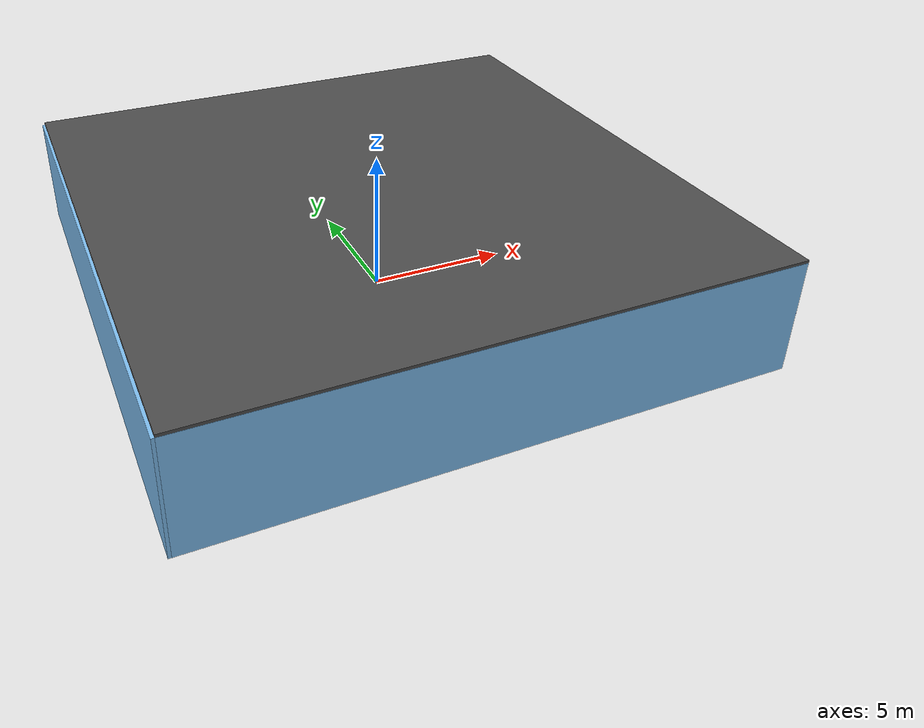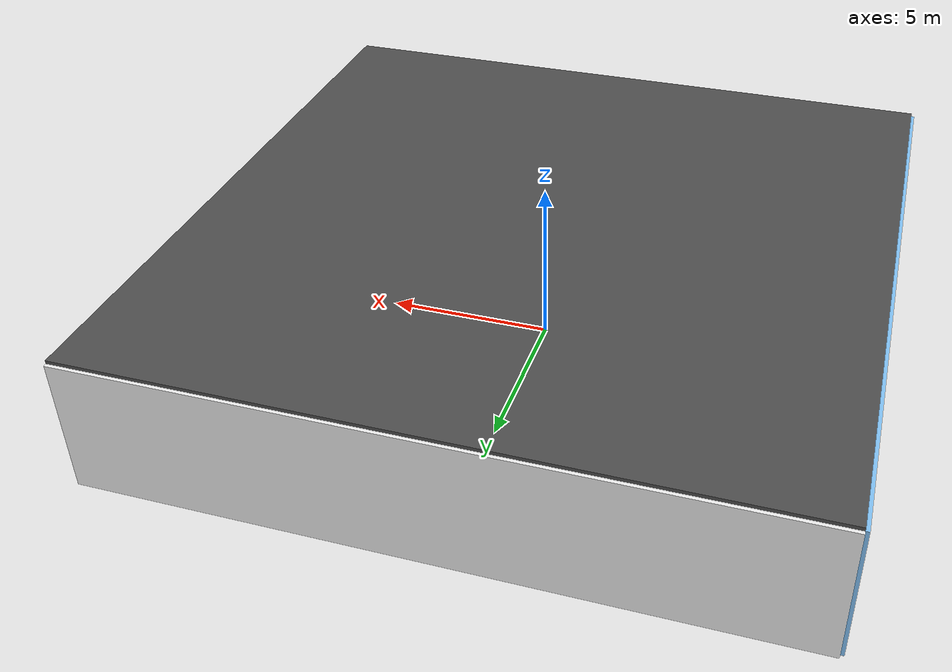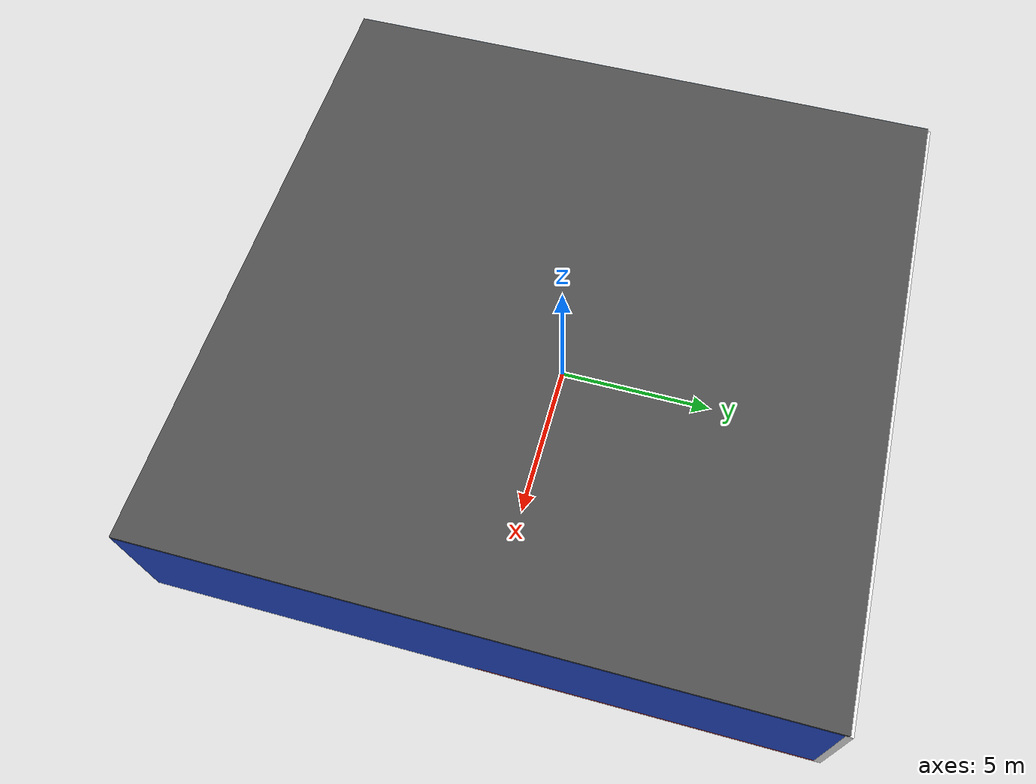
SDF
<sdf version="1.4">
 <world name="default">
  <physics type="ode">
   <max_step_size>0.001</max_step_size>
   <real_time_factor>1</real_time_factor>
   <real_time_update_rate>1000</real_time_update_rate>
   <gravity>0 0 -9.8</gravity>
  </physics>
  <scene><ambient>0.4 0.4 0.4 1</ambient><background>0.7 0.7 0.7 1</background><shadows>1</shadows></scene>
  <model name="Surrounding">
   <static>1</static>
   <link name="Ceiling">
    <collision name="Ceiling_Collision"><geometry><box><size>20 20 0.1</size></box></geometry></collision>
    <visual name="Ceiling_Visual">
     <geometry><box><size>20 20 0.1</size></box></geometry>
     <material>
      <script><uri>file://media/materials/scripts/gazebo.material</uri><name>Gazebo/DarkGrey</name></script>
     </material>
    </visual>
    <pose>0 0 4.05 0 0 0</pose>
   </link>
   <link name="Wall_South">
    <collision name="Wall_South_Collision">
     <geometry><box><size>20 0 4</size></box></geometry>
     <pose>0 0 2 0 -0 0</pose>
    </collision>
    <visual name="Wall_South_Visual">
     <pose>0 0 2 0 -0 0</pose>
     <geometry><box><size>20 0 4</size></box></geometry>
     <material>
      <script><uri>file://media/materials/scripts/gazebo.material</uri><name>Gazebo/SkyBlue</name></script>
     </material>
    </visual>
    <velocity_decay><linear>0</linear><angular>0</angular></velocity_decay>
    <pose>0 -10 0 0 -0 0</pose>
   </link>
   <link name="Wall_East">
    <collision name="Wall_21_Collision">
     <geometry><box><size>20 0 4</size></box></geometry>
     <pose>0 0 2 0 -0 0</pose>
    </collision>
    <visual name="Wall_21_Visual">
     <pose>0 0 2 0 -0 0</pose>
     <geometry><box><size>20 0 4</size></box></geometry>
     <material>
      <script><uri>file://media/materials/scripts/gazebo.material</uri><name>Gazebo/BlueGlow</name></script>
     </material>
    </visual>
    <velocity_decay><linear>0</linear><angular>0</angular></velocity_decay>
    <pose>10 0 0 0 -0 1.5708</pose>
   </link>
   <link name="Wall_North">
    <collision name="Wall_22_Collision">
     <geometry><box><size>20 0.2 4</size></box></geometry>
     <pose>0 0 2 0 -0 0</pose>
    </collision>
    <visual name="Wall_22_Visual">
     <pose>0 0 2 0 -0 0</pose>
     <geometry><box><size>20 0.2 4</size></box></geometry>
     <material>
      <script><uri>file://media/materials/scripts/gazebo.material</uri><name>Gazebo/WhiteGlow</name></script>
     </material>
    </visual>
    <velocity_decay><linear>0</linear><angular>0</angular></velocity_decay>
    <pose>0 10 0 0 -0 0</pose>
   </link>
   <link name="Wall_West">
    <collision name="Wall_23_Collision">
     <geometry><box><size>20 0.2 4</size></box></geometry>
     <pose>0 0 2 0 -0 0</pose>
    </collision>
    <visual name="Wall_23_Visual">
     <pose>0 0 2 0 -0 0</pose>
     <geometry><box><size>20 0.2 4</size></box></geometry>
     <material>
      <script><uri>file://media/materials/scripts/gazebo.material</uri><name>Gazebo/SkyBlue</name></script>
     </material>
    </visual>
    <velocity_decay><linear>0</linear><angular>0</angular></velocity_decay>
    <pose>-10 0 0 0 0 -1.5708</pose>
   </link>
   <link name="Ground_link">
    <collision name="collision">
     <pose>0 0 .05 0 -0 0</pose>
     <geometry><box><size>20 20 0.1</size></box></geometry>
    </collision>
    <visual name="visual">
     <pose>0 0 .05 0 -0 0</pose>
     <geometry><box><size>20 20 0.1</size></box></geometry>
     <material>
      <script><uri>file://media/materials/scripts/gazebo.material</uri><name>Gazebo/Red</name></script>
     </material>
    </visual>
   </link>
   <static>1</static>
  </model>
  <spherical_coordinates>
   <surface_model>EARTH_WGS84</surface_model>
   <latitude_deg>0</latitude_deg>
   <longitude_deg>0</longitude_deg>
   <elevation>0</elevation>
   <heading_deg>0</heading_deg>
  </spherical_coordinates>
  <light name="lightball_0" type="diffuse">
   <diffuse>0.8 0.8 0.8 1</diffuse>
   <specular>0.2 0.2 0.2 1</specular>
   <attenuation>
    <range>100</range>
    <constant>0.7</constant>
    <linear>0.01</linear>
    <quadratic>0.001</quadratic>
   </attenuation>
   <direction>-0.5 0.1 -0.9</direction>
   <pose>-9.63610668861 -9.25148400574 1.42734275089 0 0 0</pose>
  </light>
  <light name="lightball_1" type="diffuse">
   <diffuse>0.8 0.8 0.8 1</diffuse>
   <specular>0.2 0.2 0.2 1</specular>
   <attenuation>
    <range>100</range>
    <constant>0.7</constant>
    <linear>0.01</linear>
    <quadratic>0.001</quadratic>
   </attenuation>
   <direction>-0.5 0.1 -0.9</direction>
   <pose>-6.23916847418 7.16323029165 2.34671601568 0 0 0</pose>
  </light>
  <light name="lightball_2" type="diffuse">
   <diffuse>0.8 0.8 0.8 1</diffuse>
   <specular>0.2 0.2 0.2 1</specular>
   <attenuation>
    <range>100</range>
    <constant>0.7</constant>
    <linear>0.01</linear>
    <quadratic>0.001</quadratic>
   </attenuation>
   <direction>-0.5 0.1 -0.9</direction>
   <pose>-4.04444094715 -7.81965324006 1.17993695378 0 0 0</pose>
  </light>
  <light name="lightball_3" type="diffuse">
   <diffuse>0.8 0.8 0.8 1</diffuse>
   <specular>0.2 0.2 0.2 1</specular>
   <attenuation>
    <range>100</range>
    <constant>0.7</constant>
    <linear>0.01</linear>
    <quadratic>0.001</quadratic>
   </attenuation>
   <direction>-0.5 0.1 -0.9</direction>
   <pose>2.61388942178 7.12736290818 2.52363439043 0 0 0</pose>
  </light>
  <light name="lightball_4" type="diffuse">
   <diffuse>0.8 0.8 0.8 1</diffuse>
   <specular>0.2 0.2 0.2 1</specular>
   <attenuation>
    <range>100</range>
    <constant>0.7</constant>
    <linear>0.01</linear>
    <quadratic>0.001</quadratic>
   </attenuation>
   <direction>-0.5 0.1 -0.9</direction>
   <pose>5.83418052474 8.17822749965 2.28188309943 0 0 0</pose>
  </light>
  <light name="lightball_5" type="diffuse">
   <diffuse>0.8 0.8 0.8 1</diffuse>
   <specular>0.2 0.2 0.2 1</specular>
   <attenuation>
    <range>100</range>
    <constant>0.7</constant>
    <linear>0.01</linear>
    <quadratic>0.001</quadratic>
   </attenuation>
   <direction>-0.5 0.1 -0.9</direction>
   <pose>-4.53798600114 -9.74618817273 3.86867466903 0 0 0</pose>
  </light>
  <light name="lightball_6" type="diffuse">
   <diffuse>0.8 0.8 0.8 1</diffuse>
   <specular>0.2 0.2 0.2 1</specular>
   <attenuation>
    <range>100</range>
    <constant>0.7</constant>
    <linear>0.01</linear>
    <quadratic>0.001</quadratic>
   </attenuation>
   <direction>-0.5 0.1 -0.9</direction>
   <pose>-8.37516752151 -9.31131762909 3.87589067543 0 0 0</pose>
  </light>
  <light name="lightball_7" type="diffuse">
   <diffuse>0.8 0.8 0.8 1</diffuse>
   <specular>0.2 0.2 0.2 1</specular>
   <attenuation>
    <range>100</range>
    <constant>0.7</constant>
    <linear>0.01</linear>
    <quadratic>0.001</quadratic>
   </attenuation>
   <direction>-0.5 0.1 -0.9</direction>
   <pose>-6.2130589211 -1.89343463148 1.51353719182 0 0 0</pose>
  </light>
  <light name="lightball_8" type="diffuse">
   <diffuse>0.8 0.8 0.8 1</diffuse>
   <specular>0.2 0.2 0.2 1</specular>
   <attenuation>
    <range>100</range>
    <constant>0.7</constant>
    <linear>0.01</linear>
    <quadratic>0.001</quadratic>
   </attenuation>
   <direction>-0.5 0.1 -0.9</direction>
   <pose>-8.5565908333 -1.77184839507 2.1597813264 0 0 0</pose>
  </light>
  <light name="lightball_9" type="diffuse">
   <diffuse>0.8 0.8 0.8 1</diffuse>
   <specular>0.2 0.2 0.2 1</specular>
   <attenuation>
    <range>100</range>
    <constant>0.7</constant>
    <linear>0.01</linear>
    <quadratic>0.001</quadratic>
   </attenuation>
   <direction>-0.5 0.1 -0.9</direction>
   <pose>1.87569760973 3.9880396708 0.792326929046 0 0 0</pose>
  </light>
  <light name="lightball_10" type="diffuse">
   <diffuse>0.8 0.8 0.8 1</diffuse>
   <specular>0.2 0.2 0.2 1</specular>
   <attenuation>
    <range>100</range>
    <constant>0.7</constant>
    <linear>0.01</linear>
    <quadratic>0.001</quadratic>
   </attenuation>
   <direction>-0.5 0.1 -0.9</direction>
   <pose>-1.96602940476 -3.63572064956 1.63177632306 0 0 0</pose>
  </light>
  <light name="lightball_11" type="diffuse">
   <diffuse>0.8 0.8 0.8 1</diffuse>
   <specular>0.2 0.2 0.2 1</specular>
   <attenuation>
    <range>100</range>
    <constant>0.7</constant>
    <linear>0.01</linear>
    <quadratic>0.001</quadratic>
   </attenuation>
   <direction>-0.5 0.1 -0.9</direction>
   <pose>-8.96949363247 -5.96216524026 1.49758001422 0 0 0</pose>
  </light>
  <include>
   <uri>model://textured_shapes</uri>
   <pose>-3.42274523555 -6.35460216764 0 0 0 2.64019448275</pose>
  </include>
  <include><uri>model://cabinet</uri><pose>2.59552162558 -3.94250837917 0 0 0 0.5949121778</pose></include>
  <include>
   <uri>model://construction_cone</uri>
   <pose>5.48831196366 -2.20893140758 0 0 0 2.40651231644</pose>
  </include>
  <include><uri>model://cabinet</uri><pose>6.56145271059 -7.50133906398 0 0 0 2.12072833643</pose></include>
 </world>
</sdf>

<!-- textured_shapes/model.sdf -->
<sdf version="1.6">
  <model name="textured_shapes">
    <pose>0 0 0.5 0 0 0</pose>
    <link name="box">
      <pose>0 -1.5 0 0 0 0</pose>
      <collision name="collision">
        <geometry>
          <box>
            <size>1 1 1</size>
          </box>
        </geometry>
      </collision>
      <visual name="visual">
        <geometry>
          <box>
            <size>1 1 1</size>
          </box>
        </geometry>
        <material>
          <script>
            <uri>model://../model_source/models/textured_shapes/materials/scripts</uri>
            <uri>model://../model_source/models/textured_shapes/materials/textures</uri>
            <name>TexturedShape/Squares</name>
          </script>
        </material>
      </visual>
    </link>
    <link name="sphere">
      <collision name="collision">
        <geometry>
          <sphere>
            <radius>0.5</radius>
          </sphere>
        </geometry>
      </collision>
      <visual name="visual">
        <geometry>
          <sphere>
            <radius>0.5</radius>
          </sphere>
        </geometry>
        <material>
          <script>
            <uri>model://../model_source/models/textured_shapes/materials/scripts</uri>
            <uri>model://../model_source/models/textured_shapes/materials/textures</uri>
            <name>TexturedShape/Squares</name>
          </script>
        </material>
      </visual>
    </link>
    <link name="cylinder">
      <pose>0 1.5 0 0 0 0</pose>
      <collision name="collision">
        <geometry>
          <cylinder>
            <radius>0.5</radius>
            <length>1</length>
          </cylinder>
        </geometry>
      </collision>
      <visual name="visual">
        <geometry>
          <cylinder>
            <radius>0.5</radius>
            <length>1</length>
          </cylinder>
        </geometry>
        <material>
          <script>
            <uri>model://../model_source/models/textured_shapes/materials/scripts</uri>
            <uri>model://../model_source/models/textured_shapes/materials/textures</uri>
            <name>TexturedShape/Squares</name>
          </script>
        </material>
      </visual>
    </link>
  </model>
</sdf>

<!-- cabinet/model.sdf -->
<sdf version="1.5">
  <model name="cabinet">
    <static>true</static>
    <link name="cabinet_bottom_plate">
      <inertial>
        <pose>0 0 -1 0 0 0</pose>
        <inertia>
          <ixx>2.050000</ixx>
          <ixy>0</ixy>
          <ixz>0</ixz>
          <iyy>2.050000</iyy>
          <iyz>0</iyz>
          <izz>2.050000</izz>
        </inertia>
        <mass>25.000000</mass>
      </inertial>
      <collision name="cabinet_bottom_plate_geom">
        <pose>0 0 0.010000 0 0 0</pose>
        <geometry>
          <box>
            <size>0.450000 0.450000 0.020000</size>
          </box>
        </geometry>
      </collision>
      <visual name="cabinet_bottom_plate_geom_visual">
        <pose>0 0 0.010000 0 0 0</pose>
        <geometry>
          <box>
            <size>0.450000 0.450000 0.020000</size>
          </box>
        </geometry>
        <material>
          <script>
            <uri>model://media/materials/scripts/gazebo.material</uri>
            <name>Gazebo/Wood</name>
          </script>
        </material>
      </visual>
      <collision name="cabinet_bottom_plate_geom_cabinet_back_plate">
        <pose>0.235000 0 0.510000 0 0 0</pose>
        <geometry>
          <box>
            <size>0.020000 0.450000 1.020000</size>
          </box>
        </geometry>
      </collision>
      <visual name="cabinet_bottom_plate_geom_cabinet_back_plate_visual">
        <pose>0.235000 0 0.510000 0 0 0</pose>
        <geometry>
          <box>
            <size>0.020000 0.450000 1.020000</size>
          </box>
        </geometry>
        <material>
          <script>
            <uri>model://media/materials/scripts/gazebo.material</uri>
            <name>Gazebo/Wood</name>
          </script>
        </material>
      </visual>
      <collision name="cabinet_bottom_plate_geom_cabinet_left_plate">
        <pose>0 0.235000 0.510000 0 0 0</pose>
        <geometry>
          <box>
            <size>0.450000 0.020000 1.020000</size>
          </box>
        </geometry>
      </collision>
      <visual name="cabinet_bottom_plate_geom_cabinet_left_plate_visual">
        <pose>0 0.235000 0.510000 0 0 0</pose>
        <geometry>
          <box>
            <size>0.450000 0.020000 1.020000</size>
          </box>
        </geometry>
        <material>
          <script>
            <uri>model://media/materials/scripts/gazebo.material</uri>
            <name>Gazebo/Wood</name>
          </script>
        </material>
      </visual>
      <collision name="cabinet_bottom_plate_geom_cabinet_middle_plate">
        <pose>0 0 0.510000 0 0 0</pose>
        <geometry>
          <box>
            <size>0.450000 0.450000 0.020000</size>
          </box>
        </geometry>
      </collision>
      <visual name="cabinet_bottom_plate_geom_cabinet_middle_plate_visual">
        <pose>0 0 0.510000 0 0 0</pose>
        <geometry>
          <box>
            <size>0.450000 0.450000 0.020000</size>
          </box>
        </geometry>
        <material>
          <script>
            <uri>model://media/materials/scripts/gazebo.material</uri>
            <name>Gazebo/Wood</name>
          </script>
        </material>
      </visual>
      <collision name="cabinet_bottom_plate_geom_cabinet_right_plate">
        <pose>0 -0.235000 0.510000 0 0 0</pose>
        <geometry>
          <box>
            <size>0.450000 0.020000 1.020000</size>
          </box>
        </geometry>
      </collision>
      <visual name="cabinet_bottom_plate_geom_cabinet_right_plate_visual">
        <pose>0 -0.235000 0.510000 0 0 0</pose>
        <geometry>
          <box>
            <size>0.450000 0.020000 1.020000</size>
          </box>
        </geometry>
        <material>
          <script>
            <uri>model://media/materials/scripts/gazebo.material</uri>
            <name>Gazebo/Wood</name>
          </script>
        </material>
      </visual>
      <collision name="cabinet_bottom_plate_geom_cabinet_top_plate">
        <pose>0 0 1.010000 0 0 0</pose>
        <geometry>
          <box>
            <size>0.450000 0.450000 0.020000</size>
          </box>
        </geometry>
      </collision>
      <visual name="cabinet_bottom_plate_geom_cabinet_top_plate_visual">
        <pose>0 0 1.010000 0 0 0</pose>
        <geometry>
          <box>
            <size>0.450000 0.450000 0.020000</size>
          </box>
        </geometry>
        <material>
          <script>
            <uri>model://media/materials/scripts/gazebo.material</uri>
            <name>Gazebo/Wood</name>
          </script>
        </material>
      </visual>
    </link>
  </model>
</sdf>

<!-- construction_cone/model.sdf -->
<sdf version="1.5">
  <model name="Construction Cone">
    <link name="link">
      <collision name="collision">
        <geometry>
          <mesh>
            <scale>10 10 10</scale>
            <uri>file://isr-testbed/construction_cone/meshes/construction_cone.dae</uri>
          </mesh>
        </geometry>
      </collision>
      <visual name="visual">
        <geometry>
          <mesh>
            <scale>10 10 10</scale>
            <uri>file://isr-testbed/construction_cone/meshes/construction_cone.dae</uri>
          </mesh>
        </geometry>
      </visual>
    </link>
  </model>
</sdf>
